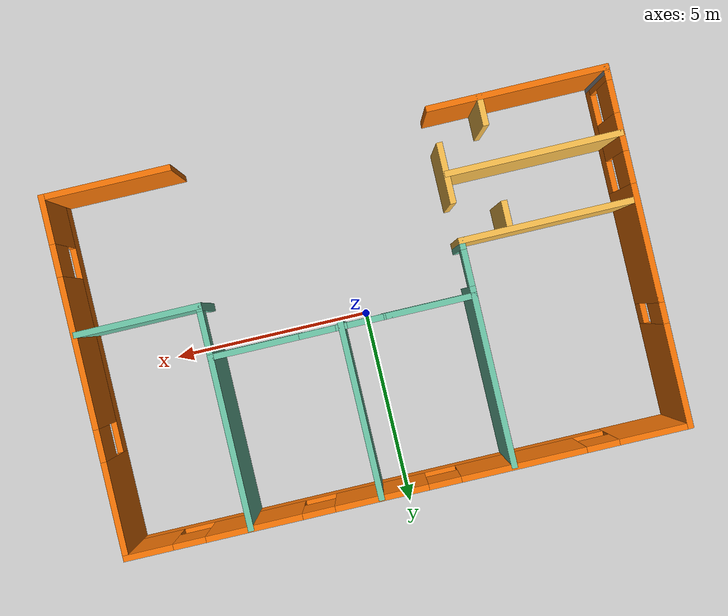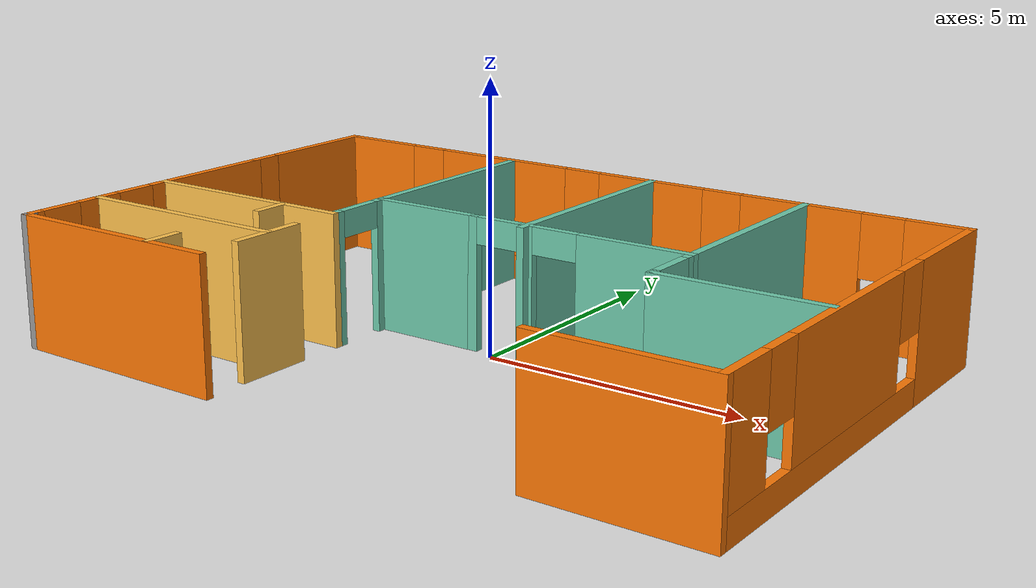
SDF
<?xml version='1.0'?>
<sdf version='1.6'>
  <model name='Office'>
    <pose frame=''>-0.004211 -0.031742 0 0 -0 0</pose>
    <link name='Wall_0'>
      <pose frame=''>-6.925 2.875 0 0 -0 -1.5708</pose>
      <visual name='Wall_0_Visual_0'>
        <pose frame=''>-0.334163 0 1.25 0 -0 0</pose>
        <geometry>
          <box>
            <size>2.58167 0.15 2.5</size>
          </box>
        </geometry>
        <material>
          <script>
            <uri>file://media/materials/scripts/gazebo.material</uri>
            <name>Gazebo/Grey</name>
          </script>
          <ambient>0.996078 0.47451 0.0196078 1</ambient>
        </material>
        <meta>
          <layer>0</layer>
        </meta>
      </visual>
      <collision name='Wall_0_Collision_0'>
        <geometry>
          <box>
            <size>2.58167 0.15 2.5</size>
          </box>
        </geometry>
        <pose frame=''>-0.334163 0 1.25 0 -0 0</pose>
      </collision>
      <visual name='Wall_0_Visual_1'>
        <pose frame=''>1.29084 0 0.25 0 -0 0</pose>
        <geometry>
          <box>
            <size>0.668327 0.15 0.5</size>
          </box>
        </geometry>
        <material>
          <script>
            <uri>file://media/materials/scripts/gazebo.material</uri>
            <name>Gazebo/Grey</name>
          </script>
          <ambient>0.996078 0.47451 0.0196078 1</ambient>
        </material>
        <meta>
          <layer>0</layer>
        </meta>
      </visual>
      <collision name='Wall_0_Collision_1'>
        <geometry>
          <box>
            <size>0.668327 0.15 0.5</size>
          </box>
        </geometry>
        <pose frame=''>1.29084 0 0.25 0 -0 0</pose>
      </collision>
      <visual name='Wall_0_Visual_2'>
        <pose frame=''>1.29084 0 1.9 0 -0 0</pose>
        <geometry>
          <box>
            <size>0.668327 0.15 1.2</size>
          </box>
        </geometry>
        <material>
          <script>
            <uri>file://media/materials/scripts/gazebo.material</uri>
            <name>Gazebo/Grey</name>
          </script>
          <ambient>0.996078 0.47451 0.0196078 1</ambient>
        </material>
        <meta>
          <layer>0</layer>
        </meta>
      </visual>
      <collision name='Wall_0_Collision_2'>
        <geometry>
          <box>
            <size>0.668327 0.15 1.2</size>
          </box>
        </geometry>
        <pose frame=''>1.29084 0 1.9 0 -0 0</pose>
      </collision>
    </link>
    <link name='Wall_1'>
      <pose frame=''>-6.925 -1.475 0 0 -0 -1.5708</pose>
      <visual name='Wall_1_Visual_0'>
        <pose frame=''>-1.41558 0 1.25 0 -0 0</pose>
        <geometry>
          <box>
            <size>2.91885 0.15 2.5</size>
          </box>
        </geometry>
        <material>
          <script>
            <uri>file://media/materials/scripts/gazebo.material</uri>
            <name>Gazebo/Grey</name>
          </script>
          <ambient>0.996078 0.47451 0.0196078 1</ambient>
        </material>
        <meta>
          <layer>0</layer>
        </meta>
      </visual>
      <collision name='Wall_1_Collision_0'>
        <geometry>
          <box>
            <size>2.91885 0.15 2.5</size>
          </box>
        </geometry>
        <pose frame=''>-1.41558 0 1.25 0 -0 0</pose>
      </collision>
      <visual name='Wall_1_Visual_1'>
        <pose frame=''>1.45942 0 0.25 0 -0 0</pose>
        <geometry>
          <box>
            <size>2.83115 0.15 0.5</size>
          </box>
        </geometry>
        <material>
          <script>
            <uri>file://media/materials/scripts/gazebo.material</uri>
            <name>Gazebo/Grey</name>
          </script>
          <ambient>0.996078 0.47451 0.0196078 1</ambient>
        </material>
        <meta>
          <layer>0</layer>
        </meta>
      </visual>
      <collision name='Wall_1_Collision_1'>
        <geometry>
          <box>
            <size>2.83115 0.15 0.5</size>
          </box>
        </geometry>
        <pose frame=''>1.45942 0 0.25 0 -0 0</pose>
      </collision>
      <visual name='Wall_1_Visual_2'>
        <pose frame=''>1.31075 0 1.5 0 -0 0</pose>
        <geometry>
          <box>
            <size>0.933798 0.15 2</size>
          </box>
        </geometry>
        <material>
          <script>
            <uri>file://media/materials/scripts/gazebo.material</uri>
            <name>Gazebo/Grey</name>
          </script>
          <ambient>0.996078 0.47451 0.0196078 1</ambient>
        </material>
        <meta>
          <layer>0</layer>
        </meta>
      </visual>
      <collision name='Wall_1_Collision_2'>
        <geometry>
          <box>
            <size>0.933798 0.15 2</size>
          </box>
        </geometry>
        <pose frame=''>1.31075 0 1.5 0 -0 0</pose>
      </collision>
      <visual name='Wall_1_Visual_3'>
        <pose frame=''>2.72632 0 1.5 0 -0 0</pose>
        <geometry>
          <box>
            <size>0.297352 0.15 2</size>
          </box>
        </geometry>
        <material>
          <script>
            <uri>file://media/materials/scripts/gazebo.material</uri>
            <name>Gazebo/Grey</name>
          </script>
          <ambient>0.996078 0.47451 0.0196078 1</ambient>
        </material>
        <meta>
          <layer>0</layer>
        </meta>
      </visual>
      <collision name='Wall_1_Collision_3'>
        <geometry>
          <box>
            <size>0.297352 0.15 2</size>
          </box>
        </geometry>
        <pose frame=''>2.72632 0 1.5 0 -0 0</pose>
      </collision>
      <visual name='Wall_1_Visual_4'>
        <pose frame=''>0.443851 0 1.9 0 -0 0</pose>
        <geometry>
          <box>
            <size>0.8 0.15 1.2</size>
          </box>
        </geometry>
        <material>
          <script>
            <uri>file://media/materials/scripts/gazebo.material</uri>
            <name>Gazebo/Grey</name>
          </script>
          <ambient>0.996078 0.47451 0.0196078 1</ambient>
        </material>
        <meta>
          <layer>0</layer>
        </meta>
      </visual>
      <collision name='Wall_1_Collision_4'>
        <geometry>
          <box>
            <size>0.8 0.15 1.2</size>
          </box>
        </geometry>
        <pose frame=''>0.443851 0 1.9 0 -0 0</pose>
      </collision>
      <visual name='Wall_1_Visual_5'>
        <pose frame=''>2.17765 0 1.9 0 -0 0</pose>
        <geometry>
          <box>
            <size>0.8 0.15 1.2</size>
          </box>
        </geometry>
        <material>
          <script>
            <uri>file://media/materials/scripts/gazebo.material</uri>
            <name>Gazebo/Grey</name>
          </script>
          <ambient>0.996078 0.47451 0.0196078 1</ambient>
        </material>
        <meta>
          <layer>0</layer>
        </meta>
      </visual>
      <collision name='Wall_1_Collision_5'>
        <geometry>
          <box>
            <size>0.8 0.15 1.2</size>
          </box>
        </geometry>
        <pose frame=''>2.17765 0 1.9 0 -0 0</pose>
      </collision>
    </link>
    <link name='Wall_10'>
      <collision name='Wall_10_Collision'>
        <geometry>
          <box>
            <size>4.4 0.15 2.5</size>
          </box>
        </geometry>
        <pose frame=''>0 0 1.25 0 -0 0</pose>
      </collision>
      <visual name='Wall_10_Visual'>
        <pose frame=''>0 0 1.25 0 -0 0</pose>
        <geometry>
          <box>
            <size>4.4 0.15 2.5</size>
          </box>
        </geometry>
        <material>
          <script>
            <uri>file://media/materials/scripts/gazebo.material</uri>
            <name>Gazebo/Grey</name>
          </script>
          <ambient>1 0.764706 0.305882 1</ambient>
        </material>
        <meta>
          <layer>0</layer>
        </meta>
      </visual>
      <pose frame=''>-4.77879 -2.76026 0 0 -0 0</pose>
    </link>
    <link name='Wall_12'>
      <collision name='Wall_12_Collision'>
        <geometry>
          <box>
            <size>1.5 0.15 2.5</size>
          </box>
        </geometry>
        <pose frame=''>0 0 1.25 0 -0 0</pose>
      </collision>
      <visual name='Wall_12_Visual'>
        <pose frame=''>0 0 1.25 0 -0 0</pose>
        <geometry>
          <box>
            <size>1.5 0.15 2.5</size>
          </box>
        </geometry>
        <material>
          <script>
            <uri>file://media/materials/scripts/gazebo.material</uri>
            <name>Gazebo/Grey</name>
          </script>
          <ambient>1 0.764706 0.305882 1</ambient>
        </material>
        <meta>
          <layer>0</layer>
        </meta>
      </visual>
      <pose frame=''>-2.62966 -2.78159 0 0 -0 -1.5708</pose>
    </link>
    <link name='Wall_14'>
      <collision name='Wall_14_Collision'>
        <geometry>
          <box>
            <size>4.46141 0.15 2.5</size>
          </box>
        </geometry>
        <pose frame=''>0 0 1.25 0 -0 0</pose>
      </collision>
      <visual name='Wall_14_Visual'>
        <pose frame=''>0 0 1.25 0 -0 0</pose>
        <geometry>
          <box>
            <size>4.46141 0.15 2.5</size>
          </box>
        </geometry>
        <material>
          <script>
            <uri>file://media/materials/scripts/gazebo.material</uri>
            <name>Gazebo/Grey</name>
          </script>
          <ambient>1 0.764706 0.305882 1</ambient>
        </material>
        <meta>
          <layer>0</layer>
        </meta>
      </visual>
      <pose frame=''>-4.76929 -1.12826 0 0 -0 0</pose>
    </link>
    <link name='Wall_17'>
      <collision name='Wall_17_Collision'>
        <geometry>
          <box>
            <size>0.75 0.15 2.5</size>
          </box>
        </geometry>
        <pose frame=''>0 0 1.25 0 -0 0</pose>
      </collision>
      <visual name='Wall_17_Visual'>
        <pose frame=''>0 0 1.25 0 -0 0</pose>
        <geometry>
          <box>
            <size>0.75 0.15 2.5</size>
          </box>
        </geometry>
        <material>
          <script>
            <uri>file://media/materials/scripts/gazebo.material</uri>
            <name>Gazebo/Grey</name>
          </script>
          <ambient>1 0.764706 0.305882 1</ambient>
        </material>
        <meta>
          <layer>0</layer>
        </meta>
      </visual>
      <pose frame=''>-3.81733 -1.45488 0 0 -0 -1.5708</pose>
    </link>
    <link name='Wall_19'>
      <collision name='Wall_19_Collision'>
        <geometry>
          <box>
            <size>0.75 0.15 2.5</size>
          </box>
        </geometry>
        <pose frame=''>0 0 1.25 0 -0 0</pose>
      </collision>
      <visual name='Wall_19_Visual'>
        <pose frame=''>0 0 1.25 0 -0 0</pose>
        <geometry>
          <box>
            <size>0.75 0.15 2.5</size>
          </box>
        </geometry>
        <material>
          <script>
            <uri>file://media/materials/scripts/gazebo.material</uri>
            <name>Gazebo/Grey</name>
          </script>
          <ambient>1 0.764706 0.305882 1</ambient>
        </material>
        <meta>
          <layer>0</layer>
        </meta>
      </visual>
      <pose frame=''>-3.81733 -4.0421 0 0 -0 1.5708</pose>
    </link>
    <link name='Wall_2'>
      <collision name='Wall_2_Collision'>
        <geometry>
          <box>
            <size>0.25 0.15 2.5</size>
          </box>
        </geometry>
        <pose frame=''>0 0 1.25 0 -0 0</pose>
      </collision>
      <visual name='Wall_2_Visual'>
        <pose frame=''>0 0 1.25 0 -0 0</pose>
        <geometry>
          <box>
            <size>0.25 0.15 2.5</size>
          </box>
        </geometry>
        <material>
          <script>
            <uri>file://media/materials/scripts/gazebo.material</uri>
            <name>Gazebo/Grey</name>
          </script>
          <ambient>1 1 1 1</ambient>
        </material>
        <meta>
          <layer>0</layer>
        </meta>
      </visual>
      <pose frame=''>-6.925 -4.325 0 0 -0 -1.5708</pose>
    </link>
    <link name='Wall_21'>
      <collision name='Wall_21_Collision'>
        <geometry>
          <box>
            <size>4.31663 0.15 2.5</size>
          </box>
        </geometry>
        <pose frame=''>0 0 1.25 0 -0 0</pose>
      </collision>
      <visual name='Wall_21_Visual'>
        <pose frame=''>0 0 1.25 0 -0 0</pose>
        <geometry>
          <box>
            <size>4.31663 0.15 2.5</size>
          </box>
        </geometry>
        <material>
          <script>
            <uri>file://media/materials/scripts/gazebo.material</uri>
            <name>Gazebo/Grey</name>
          </script>
          <ambient>0.435294 0.796078 0.67451 1</ambient>
        </material>
        <meta>
          <layer>0</layer>
        </meta>
      </visual>
      <pose frame=''>-2.61382 2.30206 0 0 -0 1.57081</pose>
    </link>
    <link name='Wall_23'>
      <collision name='Wall_23_Collision'>
        <geometry>
          <box>
            <size>2.25 0.15 2.5</size>
          </box>
        </geometry>
        <pose frame=''>0 0 1.25 0 -0 0</pose>
      </collision>
      <visual name='Wall_23_Visual'>
        <pose frame=''>0 0 1.25 0 -0 0</pose>
        <geometry>
          <box>
            <size>2.25 0.15 2.5</size>
          </box>
        </geometry>
        <material>
          <script>
            <uri>file://media/materials/scripts/gazebo.material</uri>
            <name>Gazebo/Grey</name>
          </script>
          <ambient>0.435294 0.796078 0.67451 1</ambient>
        </material>
        <meta>
          <layer>0</layer>
        </meta>
      </visual>
      <pose frame=''>-1.56379 0.218742 0 0 -0 0</pose>
    </link>
    <link name='Wall_25'>
      <collision name='Wall_25_Collision'>
        <geometry>
          <box>
            <size>4.5 0.15 2.5</size>
          </box>
        </geometry>
        <pose frame=''>0 0 1.25 0 -0 0</pose>
      </collision>
      <visual name='Wall_25_Visual'>
        <pose frame=''>0 0 1.25 0 -0 0</pose>
        <geometry>
          <box>
            <size>4.5 0.15 2.5</size>
          </box>
        </geometry>
        <material>
          <script>
            <uri>file://media/materials/scripts/gazebo.material</uri>
            <name>Gazebo/Grey</name>
          </script>
          <ambient>0.435294 0.796078 0.67451 1</ambient>
        </material>
        <meta>
          <layer>0</layer>
        </meta>
      </visual>
      <pose frame=''>0.654702 2.23299 0 0 -0 -1.5708</pose>
    </link>
    <link name='Wall_27'>
      <collision name='Wall_27_Collision'>
        <geometry>
          <box>
            <size>4.33925 0.15 2.5</size>
          </box>
        </geometry>
        <pose frame=''>0 0 1.25 0 -0 0</pose>
      </collision>
      <visual name='Wall_27_Visual'>
        <pose frame=''>0 0 1.25 0 -0 0</pose>
        <geometry>
          <box>
            <size>4.33925 0.15 2.5</size>
          </box>
        </geometry>
        <material>
          <script>
            <uri>file://media/materials/scripts/gazebo.material</uri>
            <name>Gazebo/Grey</name>
          </script>
          <ambient>0.435294 0.796078 0.67451 1</ambient>
        </material>
        <meta>
          <layer>0</layer>
        </meta>
      </visual>
      <pose frame=''>3.86398 2.31337 0 0 -0 -1.57069</pose>
    </link>
    <link name='Wall_3'>
      <collision name='Wall_3_Collision'>
        <geometry>
          <box>
            <size>4.5 0.15 2.5</size>
          </box>
        </geometry>
        <pose frame=''>0 0 1.25 0 -0 0</pose>
      </collision>
      <visual name='Wall_3_Visual'>
        <pose frame=''>0 0 1.25 0 -0 0</pose>
        <geometry>
          <box>
            <size>4.5 0.15 2.5</size>
          </box>
        </geometry>
        <material>
          <script>
            <uri>file://media/materials/scripts/gazebo.material</uri>
            <name>Gazebo/Grey</name>
          </script>
          <ambient>0.996078 0.47451 0.0196078 1</ambient>
        </material>
        <meta>
          <layer>0</layer>
        </meta>
      </visual>
      <pose frame=''>-4.75 -4.375 0 0 -0 0</pose>
    </link>
    <link name='Wall_30'>
      <pose frame=''>3.86421 -0.411758 0 0 -0 -1.5708</pose>
      <visual name='Wall_30_Visual_0'>
        <pose frame=''>-0.553247 0 1.25 0 -0 0</pose>
        <geometry>
          <box>
            <size>0.304505 0.15 2.5</size>
          </box>
        </geometry>
        <material>
          <script>
            <uri>file://media/materials/scripts/gazebo.material</uri>
            <name>Gazebo/Grey</name>
          </script>
          <ambient>0.435294 0.796078 0.67451 1</ambient>
        </material>
        <meta>
          <layer>0</layer>
        </meta>
      </visual>
      <collision name='Wall_30_Collision_0'>
        <geometry>
          <box>
            <size>0.304505 0.15 2.5</size>
          </box>
        </geometry>
        <pose frame=''>-0.553247 0 1.25 0 -0 0</pose>
      </collision>
      <visual name='Wall_30_Visual_1'>
        <pose frame=''>0.602253 0 1.25 0 -0 0</pose>
        <geometry>
          <box>
            <size>0.206495 0.15 2.5</size>
          </box>
        </geometry>
        <material>
          <script>
            <uri>file://media/materials/scripts/gazebo.material</uri>
            <name>Gazebo/Grey</name>
          </script>
          <ambient>0.435294 0.796078 0.67451 1</ambient>
        </material>
        <meta>
          <layer>0</layer>
        </meta>
      </visual>
      <collision name='Wall_30_Collision_1'>
        <geometry>
          <box>
            <size>0.206495 0.15 2.5</size>
          </box>
        </geometry>
        <pose frame=''>0.602253 0 1.25 0 -0 0</pose>
      </collision>
      <visual name='Wall_30_Visual_2'>
        <pose frame=''>0.049005 0 2.25 0 -0 0</pose>
        <geometry>
          <box>
            <size>0.9 0.15 0.5</size>
          </box>
        </geometry>
        <material>
          <script>
            <uri>file://media/materials/scripts/gazebo.material</uri>
            <name>Gazebo/Grey</name>
          </script>
          <ambient>0.435294 0.796078 0.67451 1</ambient>
        </material>
        <meta>
          <layer>0</layer>
        </meta>
      </visual>
      <collision name='Wall_30_Collision_2'>
        <geometry>
          <box>
            <size>0.9 0.15 0.5</size>
          </box>
        </geometry>
        <pose frame=''>0.049005 0 2.25 0 -0 0</pose>
      </collision>
    </link>
    <link name='Wall_31'>
      <collision name='Wall_31_Collision'>
        <geometry>
          <box>
            <size>3.15 0.15 2.5</size>
          </box>
        </geometry>
        <pose frame=''>0 0 1.25 0 -0 0</pose>
      </collision>
      <visual name='Wall_31_Visual'>
        <pose frame=''>0 0 1.25 0 -0 0</pose>
        <geometry>
          <box>
            <size>3.15 0.15 2.5</size>
          </box>
        </geometry>
        <material>
          <script>
            <uri>file://media/materials/scripts/gazebo.material</uri>
            <name>Gazebo/Grey</name>
          </script>
          <ambient>0.435294 0.796078 0.67451 1</ambient>
        </material>
        <meta>
          <layer>0</layer>
        </meta>
      </visual>
      <pose frame=''>5.36421 -1.04226 0 0 -0 0</pose>
    </link>
    <link name='Wall_35'>
      <pose frame=''>1.67521 0.218742 0 0 -0 0</pose>
      <visual name='Wall_35_Visual_0'>
        <pose frame=''>-2.16383 0 1.25 0 -0 0</pose>
        <geometry>
          <box>
            <size>0.20035 0.15 2.5</size>
          </box>
        </geometry>
        <material>
          <script>
            <uri>file://media/materials/scripts/gazebo.material</uri>
            <name>Gazebo/Grey</name>
          </script>
          <ambient>0.435294 0.796078 0.67451 1</ambient>
        </material>
        <meta>
          <layer>0</layer>
        </meta>
      </visual>
      <collision name='Wall_35_Collision_0'>
        <geometry>
          <box>
            <size>0.20035 0.15 2.5</size>
          </box>
        </geometry>
        <pose frame=''>-2.16383 0 1.25 0 -0 0</pose>
      </collision>
      <visual name='Wall_35_Visual_1'>
        <pose frame=''>-1.02051 0 1.25 0 -0 0</pose>
        <geometry>
          <box>
            <size>0.286282 0.15 2.5</size>
          </box>
        </geometry>
        <material>
          <script>
            <uri>file://media/materials/scripts/gazebo.material</uri>
            <name>Gazebo/Grey</name>
          </script>
          <ambient>0.435294 0.796078 0.67451 1</ambient>
        </material>
        <meta>
          <layer>0</layer>
        </meta>
      </visual>
      <collision name='Wall_35_Collision_1'>
        <geometry>
          <box>
            <size>0.286282 0.15 2.5</size>
          </box>
        </geometry>
        <pose frame=''>-1.02051 0 1.25 0 -0 0</pose>
      </collision>
      <visual name='Wall_35_Visual_2'>
        <pose frame=''>1.14332 0 1.25 0 -0 0</pose>
        <geometry>
          <box>
            <size>2.24137 0.15 2.5</size>
          </box>
        </geometry>
        <material>
          <script>
            <uri>file://media/materials/scripts/gazebo.material</uri>
            <name>Gazebo/Grey</name>
          </script>
          <ambient>0.435294 0.796078 0.67451 1</ambient>
        </material>
        <meta>
          <layer>0</layer>
        </meta>
      </visual>
      <collision name='Wall_35_Collision_2'>
        <geometry>
          <box>
            <size>2.24137 0.15 2.5</size>
          </box>
        </geometry>
        <pose frame=''>1.14332 0 1.25 0 -0 0</pose>
      </collision>
      <visual name='Wall_35_Visual_3'>
        <pose frame=''>-1.61365 0 2.25 0 -0 0</pose>
        <geometry>
          <box>
            <size>0.9 0.15 0.5</size>
          </box>
        </geometry>
        <material>
          <script>
            <uri>file://media/materials/scripts/gazebo.material</uri>
            <name>Gazebo/Grey</name>
          </script>
          <ambient>0.435294 0.796078 0.67451 1</ambient>
        </material>
        <meta>
          <layer>0</layer>
        </meta>
      </visual>
      <collision name='Wall_35_Collision_3'>
        <geometry>
          <box>
            <size>0.9 0.15 0.5</size>
          </box>
        </geometry>
        <pose frame=''>-1.61365 0 2.25 0 -0 0</pose>
      </collision>
      <visual name='Wall_35_Visual_4'>
        <pose frame=''>-0.427368 0 2.25 0 -0 0</pose>
        <geometry>
          <box>
            <size>0.9 0.15 0.5</size>
          </box>
        </geometry>
        <material>
          <script>
            <uri>file://media/materials/scripts/gazebo.material</uri>
            <name>Gazebo/Grey</name>
          </script>
          <ambient>0.435294 0.796078 0.67451 1</ambient>
        </material>
        <meta>
          <layer>0</layer>
        </meta>
      </visual>
      <collision name='Wall_35_Collision_4'>
        <geometry>
          <box>
            <size>0.9 0.15 0.5</size>
          </box>
        </geometry>
        <pose frame=''>-0.427368 0 2.25 0 -0 0</pose>
      </collision>
    </link>
    <link name='Wall_37'>
      <pose frame=''>-2.61379 -0.454758 0 0 -0 1.5708</pose>
      <visual name='Wall_37_Visual_0'>
        <pose frame=''>-0.601451 0 1.25 0 -0 0</pose>
        <geometry>
          <box>
            <size>0.294097 0.15 2.5</size>
          </box>
        </geometry>
        <material>
          <script>
            <uri>file://media/materials/scripts/gazebo.material</uri>
            <name>Gazebo/Grey</name>
          </script>
          <ambient>0.435294 0.796078 0.67451 1</ambient>
        </material>
        <meta>
          <layer>0</layer>
        </meta>
      </visual>
      <collision name='Wall_37_Collision_0'>
        <geometry>
          <box>
            <size>0.294097 0.15 2.5</size>
          </box>
        </geometry>
        <pose frame=''>-0.601451 0 1.25 0 -0 0</pose>
      </collision>
      <visual name='Wall_37_Visual_1'>
        <pose frame=''>0.597049 0 1.25 0 -0 0</pose>
        <geometry>
          <box>
            <size>0.302903 0.15 2.5</size>
          </box>
        </geometry>
        <material>
          <script>
            <uri>file://media/materials/scripts/gazebo.material</uri>
            <name>Gazebo/Grey</name>
          </script>
          <ambient>0.435294 0.796078 0.67451 1</ambient>
        </material>
        <meta>
          <layer>0</layer>
        </meta>
      </visual>
      <collision name='Wall_37_Collision_1'>
        <geometry>
          <box>
            <size>0.302903 0.15 2.5</size>
          </box>
        </geometry>
        <pose frame=''>0.597049 0 1.25 0 -0 0</pose>
      </collision>
      <visual name='Wall_37_Visual_2'>
        <pose frame=''>-0.004403 0 2.25 0 -0 0</pose>
        <geometry>
          <box>
            <size>0.9 0.15 0.5</size>
          </box>
        </geometry>
        <material>
          <script>
            <uri>file://media/materials/scripts/gazebo.material</uri>
            <name>Gazebo/Grey</name>
          </script>
          <ambient>0.435294 0.796078 0.67451 1</ambient>
        </material>
        <meta>
          <layer>0</layer>
        </meta>
      </visual>
      <collision name='Wall_37_Collision_2'>
        <geometry>
          <box>
            <size>0.9 0.15 0.5</size>
          </box>
        </geometry>
        <pose frame=''>-0.004403 0 2.25 0 -0 0</pose>
      </collision>
    </link>
    <link name='Wall_5'>
      <pose frame=''>-0 4.425 0 0 -0 0</pose>
      <visual name='Wall_5_Visual_0'>
        <pose frame=''>-6.09502 0 1.25 0 -0 0</pose>
        <geometry>
          <box>
            <size>1.80997 0.15 2.5</size>
          </box>
        </geometry>
        <material>
          <script>
            <uri>file://media/materials/scripts/gazebo.material</uri>
            <name>Gazebo/Grey</name>
          </script>
          <ambient>0.996078 0.47451 0.0196078 1</ambient>
        </material>
        <meta>
          <layer>0</layer>
        </meta>
      </visual>
      <collision name='Wall_5_Collision_0'>
        <geometry>
          <box>
            <size>1.80997 0.15 2.5</size>
          </box>
        </geometry>
        <pose frame=''>-6.09502 0 1.25 0 -0 0</pose>
      </collision>
      <visual name='Wall_5_Visual_1'>
        <pose frame=''>0.904985 0 0.25 0 -0 0</pose>
        <geometry>
          <box>
            <size>12.19 0.15 0.5</size>
          </box>
        </geometry>
        <material>
          <script>
            <uri>file://media/materials/scripts/gazebo.material</uri>
            <name>Gazebo/Grey</name>
          </script>
          <ambient>0.996078 0.47451 0.0196078 1</ambient>
        </material>
        <meta>
          <layer>0</layer>
        </meta>
      </visual>
      <collision name='Wall_5_Collision_1'>
        <geometry>
          <box>
            <size>12.19 0.15 0.5</size>
          </box>
        </geometry>
        <pose frame=''>0.904985 0 0.25 0 -0 0</pose>
      </collision>
      <visual name='Wall_5_Visual_2'>
        <pose frame=''>-2.85092 0 1.5 0 -0 0</pose>
        <geometry>
          <box>
            <size>3.07823 0.15 2</size>
          </box>
        </geometry>
        <material>
          <script>
            <uri>file://media/materials/scripts/gazebo.material</uri>
            <name>Gazebo/Grey</name>
          </script>
          <ambient>0.996078 0.47451 0.0196078 1</ambient>
        </material>
        <meta>
          <layer>0</layer>
        </meta>
      </visual>
      <collision name='Wall_5_Collision_2'>
        <geometry>
          <box>
            <size>3.07823 0.15 2</size>
          </box>
        </geometry>
        <pose frame=''>-2.85092 0 1.5 0 -0 0</pose>
      </collision>
      <visual name='Wall_5_Visual_3'>
        <pose frame=''>0.639493 0 1.5 0 -0 0</pose>
        <geometry>
          <box>
            <size>2.30259 0.15 2</size>
          </box>
        </geometry>
        <material>
          <script>
            <uri>file://media/materials/scripts/gazebo.material</uri>
            <name>Gazebo/Grey</name>
          </script>
          <ambient>0.996078 0.47451 0.0196078 1</ambient>
        </material>
        <meta>
          <layer>0</layer>
        </meta>
      </visual>
      <collision name='Wall_5_Collision_3'>
        <geometry>
          <box>
            <size>2.30259 0.15 2</size>
          </box>
        </geometry>
        <pose frame=''>0.639493 0 1.5 0 -0 0</pose>
      </collision>
      <visual name='Wall_5_Visual_4'>
        <pose frame=''>3.7801 0 1.5 0 -0 0</pose>
        <geometry>
          <box>
            <size>2.37863 0.15 2</size>
          </box>
        </geometry>
        <material>
          <script>
            <uri>file://media/materials/scripts/gazebo.material</uri>
            <name>Gazebo/Grey</name>
          </script>
          <ambient>0.996078 0.47451 0.0196078 1</ambient>
        </material>
        <meta>
          <layer>0</layer>
        </meta>
      </visual>
      <collision name='Wall_5_Collision_4'>
        <geometry>
          <box>
            <size>2.37863 0.15 2</size>
          </box>
        </geometry>
        <pose frame=''>3.7801 0 1.5 0 -0 0</pose>
      </collision>
      <visual name='Wall_5_Visual_5'>
        <pose frame=''>6.38471 0 1.5 0 -0 0</pose>
        <geometry>
          <box>
            <size>1.23059 0.15 2</size>
          </box>
        </geometry>
        <material>
          <script>
            <uri>file://media/materials/scripts/gazebo.material</uri>
            <name>Gazebo/Grey</name>
          </script>
          <ambient>0.996078 0.47451 0.0196078 1</ambient>
        </material>
        <meta>
          <layer>0</layer>
        </meta>
      </visual>
      <collision name='Wall_5_Collision_5'>
        <geometry>
          <box>
            <size>1.23059 0.15 2</size>
          </box>
        </geometry>
        <pose frame=''>6.38471 0 1.5 0 -0 0</pose>
      </collision>
      <visual name='Wall_5_Visual_6'>
        <pose frame=''>-4.79003 0 1.9 0 -0 0</pose>
        <geometry>
          <box>
            <size>0.8 0.15 1.2</size>
          </box>
        </geometry>
        <material>
          <script>
            <uri>file://media/materials/scripts/gazebo.material</uri>
            <name>Gazebo/Grey</name>
          </script>
          <ambient>0.996078 0.47451 0.0196078 1</ambient>
        </material>
        <meta>
          <layer>0</layer>
        </meta>
      </visual>
      <collision name='Wall_5_Collision_6'>
        <geometry>
          <box>
            <size>0.8 0.15 1.2</size>
          </box>
        </geometry>
        <pose frame=''>-4.79003 0 1.9 0 -0 0</pose>
      </collision>
      <visual name='Wall_5_Visual_7'>
        <pose frame=''>-0.911799 0 1.9 0 -0 0</pose>
        <geometry>
          <box>
            <size>0.8 0.15 1.2</size>
          </box>
        </geometry>
        <material>
          <script>
            <uri>file://media/materials/scripts/gazebo.material</uri>
            <name>Gazebo/Grey</name>
          </script>
          <ambient>0.996078 0.47451 0.0196078 1</ambient>
        </material>
        <meta>
          <layer>0</layer>
        </meta>
      </visual>
      <collision name='Wall_5_Collision_7'>
        <geometry>
          <box>
            <size>0.8 0.15 1.2</size>
          </box>
        </geometry>
        <pose frame=''>-0.911799 0 1.9 0 -0 0</pose>
      </collision>
      <visual name='Wall_5_Visual_8'>
        <pose frame=''>2.19079 0 1.9 0 -0 0</pose>
        <geometry>
          <box>
            <size>0.8 0.15 1.2</size>
          </box>
        </geometry>
        <material>
          <script>
            <uri>file://media/materials/scripts/gazebo.material</uri>
            <name>Gazebo/Grey</name>
          </script>
          <ambient>0.996078 0.47451 0.0196078 1</ambient>
        </material>
        <meta>
          <layer>0</layer>
        </meta>
      </visual>
      <collision name='Wall_5_Collision_8'>
        <geometry>
          <box>
            <size>0.8 0.15 1.2</size>
          </box>
        </geometry>
        <pose frame=''>2.19079 0 1.9 0 -0 0</pose>
      </collision>
      <visual name='Wall_5_Visual_9'>
        <pose frame=''>5.36942 0 1.9 0 -0 0</pose>
        <geometry>
          <box>
            <size>0.8 0.15 1.2</size>
          </box>
        </geometry>
        <material>
          <script>
            <uri>file://media/materials/scripts/gazebo.material</uri>
            <name>Gazebo/Grey</name>
          </script>
          <ambient>0.996078 0.47451 0.0196078 1</ambient>
        </material>
        <meta>
          <layer>0</layer>
        </meta>
      </visual>
      <collision name='Wall_5_Collision_9'>
        <geometry>
          <box>
            <size>0.8 0.15 1.2</size>
          </box>
        </geometry>
        <pose frame=''>5.36942 0 1.9 0 -0 0</pose>
      </collision>
    </link>
    <link name='Wall_7'>
      <pose frame=''>6.925 0 0 0 -0 -1.5708</pose>
      <visual name='Wall_7_Visual_0'>
        <pose frame=''>-3.28521 0 1.25 0 -0 0</pose>
        <geometry>
          <box>
            <size>2.42959 0.15 2.5</size>
          </box>
        </geometry>
        <material>
          <script>
            <uri>file://media/materials/scripts/gazebo.material</uri>
            <name>Gazebo/Grey</name>
          </script>
          <ambient>0.996078 0.47451 0.0196078 1</ambient>
        </material>
        <meta>
          <layer>0</layer>
        </meta>
      </visual>
      <collision name='Wall_7_Collision_0'>
        <geometry>
          <box>
            <size>2.42959 0.15 2.5</size>
          </box>
        </geometry>
        <pose frame=''>-3.28521 0 1.25 0 -0 0</pose>
      </collision>
      <visual name='Wall_7_Visual_1'>
        <pose frame=''>1.21479 0 0.25 0 -0 0</pose>
        <geometry>
          <box>
            <size>6.57041 0.15 0.5</size>
          </box>
        </geometry>
        <material>
          <script>
            <uri>file://media/materials/scripts/gazebo.material</uri>
            <name>Gazebo/Grey</name>
          </script>
          <ambient>0.996078 0.47451 0.0196078 1</ambient>
        </material>
        <meta>
          <layer>0</layer>
        </meta>
      </visual>
      <collision name='Wall_7_Collision_1'>
        <geometry>
          <box>
            <size>6.57041 0.15 0.5</size>
          </box>
        </geometry>
        <pose frame=''>1.21479 0 0.25 0 -0 0</pose>
      </collision>
      <visual name='Wall_7_Visual_2'>
        <pose frame=''>0.603294 0 1.5 0 -0 0</pose>
        <geometry>
          <box>
            <size>3.74742 0.15 2</size>
          </box>
        </geometry>
        <material>
          <script>
            <uri>file://media/materials/scripts/gazebo.material</uri>
            <name>Gazebo/Grey</name>
          </script>
          <ambient>0.996078 0.47451 0.0196078 1</ambient>
        </material>
        <meta>
          <layer>0</layer>
        </meta>
      </visual>
      <collision name='Wall_7_Collision_2'>
        <geometry>
          <box>
            <size>3.74742 0.15 2</size>
          </box>
        </geometry>
        <pose frame=''>0.603294 0 1.5 0 -0 0</pose>
      </collision>
      <visual name='Wall_7_Visual_3'>
        <pose frame=''>3.8885 0 1.5 0 -0 0</pose>
        <geometry>
          <box>
            <size>1.223 0.15 2</size>
          </box>
        </geometry>
        <material>
          <script>
            <uri>file://media/materials/scripts/gazebo.material</uri>
            <name>Gazebo/Grey</name>
          </script>
          <ambient>0.996078 0.47451 0.0196078 1</ambient>
        </material>
        <meta>
          <layer>0</layer>
        </meta>
      </visual>
      <collision name='Wall_7_Collision_3'>
        <geometry>
          <box>
            <size>1.223 0.15 2</size>
          </box>
        </geometry>
        <pose frame=''>3.8885 0 1.5 0 -0 0</pose>
      </collision>
      <visual name='Wall_7_Visual_4'>
        <pose frame=''>-1.67041 0 1.9 0 -0 0</pose>
        <geometry>
          <box>
            <size>0.8 0.15 1.2</size>
          </box>
        </geometry>
        <material>
          <script>
            <uri>file://media/materials/scripts/gazebo.material</uri>
            <name>Gazebo/Grey</name>
          </script>
          <ambient>0.996078 0.47451 0.0196078 1</ambient>
        </material>
        <meta>
          <layer>0</layer>
        </meta>
      </visual>
      <collision name='Wall_7_Collision_4'>
        <geometry>
          <box>
            <size>0.8 0.15 1.2</size>
          </box>
        </geometry>
        <pose frame=''>-1.67041 0 1.9 0 -0 0</pose>
      </collision>
      <visual name='Wall_7_Visual_5'>
        <pose frame=''>2.877 0 1.9 0 -0 0</pose>
        <geometry>
          <box>
            <size>0.8 0.15 1.2</size>
          </box>
        </geometry>
        <material>
          <script>
            <uri>file://media/materials/scripts/gazebo.material</uri>
            <name>Gazebo/Grey</name>
          </script>
          <ambient>0.996078 0.47451 0.0196078 1</ambient>
        </material>
        <meta>
          <layer>0</layer>
        </meta>
      </visual>
      <collision name='Wall_7_Collision_5'>
        <geometry>
          <box>
            <size>0.8 0.15 1.2</size>
          </box>
        </geometry>
        <pose frame=''>2.877 0 1.9 0 -0 0</pose>
      </collision>
    </link>
    <link name='Wall_8'>
      <collision name='Wall_8_Collision'>
        <geometry>
          <box>
            <size>3.25 0.15 2.5</size>
          </box>
        </geometry>
        <pose frame=''>0 0 1.25 0 -0 0</pose>
      </collision>
      <visual name='Wall_8_Visual'>
        <pose frame=''>0 0 1.25 0 -0 0</pose>
        <geometry>
          <box>
            <size>3.25 0.15 2.5</size>
          </box>
        </geometry>
        <material>
          <script>
            <uri>file://media/materials/scripts/gazebo.material</uri>
            <name>Gazebo/Grey</name>
          </script>
          <ambient>0.996078 0.47451 0.0196078 1</ambient>
        </material>
        <meta>
          <layer>0</layer>
        </meta>
      </visual>
      <pose frame=''>5.375 -4.425 0 0 -0 3.14159</pose>
    </link>
    <static>1</static>
  </model>
</sdf>
